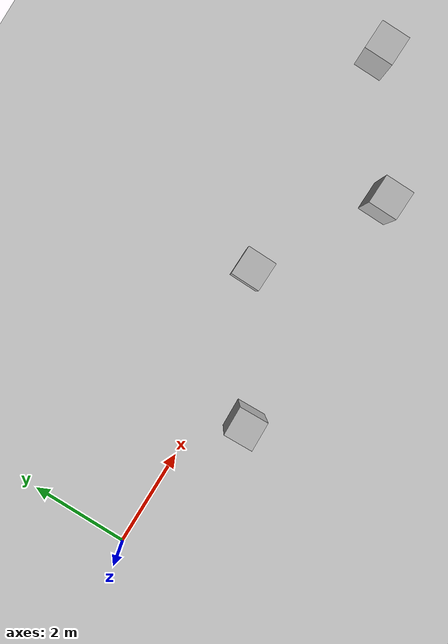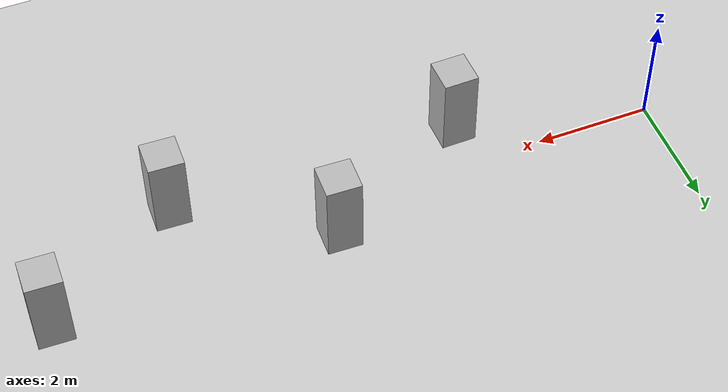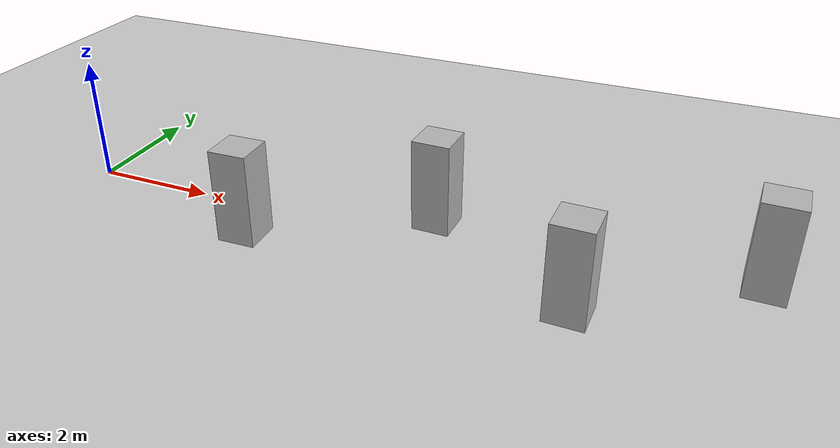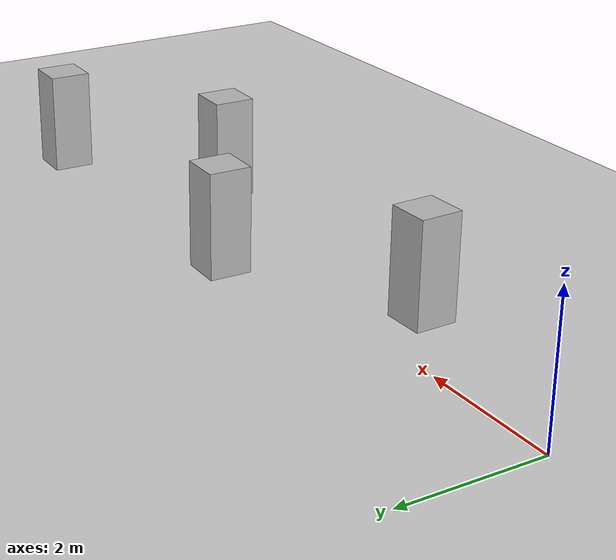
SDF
<?xml version="1.0"?>
<sdf version="1.6">
  <world name="v2-04g-r3-static-s5027">
    <gravity>0 0 -9.81</gravity>
    <physics name="v2_deterministic" type="ode">
      <max_step_size>0.002</max_step_size>
      <real_time_update_rate>500</real_time_update_rate>
    </physics>
    <include>
      <uri>model://sun</uri>
    </include>
    <include>
      <uri>model://ground_plane</uri>
    </include>
    <model name="pillar-1">
      <static>true</static>
      <pose>3.289436146 -0.787940492 0.750000000 0 0 0.024017059</pose>
      <link name="link">
        <collision name="collision">
          <geometry>
            <box>
              <size>0.600000 0.600000 1.500000</size>
            </box>
          </geometry>
        </collision>
        <visual name="visual">
          <geometry>
            <box>
              <size>0.600000 0.600000 1.500000</size>
            </box>
          </geometry>
        </visual>
      </link>
    </model>
    <model name="pillar-2">
      <static>true</static>
      <pose>5.881361616 0.636511579 0.750000000 0 0 -0.025620011</pose>
      <link name="link">
        <collision name="collision">
          <geometry>
            <box>
              <size>0.600000 0.600000 1.500000</size>
            </box>
          </geometry>
        </collision>
        <visual name="visual">
          <geometry>
            <box>
              <size>0.600000 0.600000 1.500000</size>
            </box>
          </geometry>
        </visual>
      </link>
    </model>
    <model name="pillar-3">
      <static>true</static>
      <pose>8.323158452 -0.836434839 0.750000000 0 0 -0.028485653</pose>
      <link name="link">
        <collision name="collision">
          <geometry>
            <box>
              <size>0.600000 0.600000 1.500000</size>
            </box>
          </geometry>
        </collision>
        <visual name="visual">
          <geometry>
            <box>
              <size>0.600000 0.600000 1.500000</size>
            </box>
          </geometry>
        </visual>
      </link>
    </model>
    <model name="pillar-4">
      <static>true</static>
      <pose>10.709048808 0.719710558 0.750000000 0 0 -0.027635235</pose>
      <link name="link">
        <collision name="collision">
          <geometry>
            <box>
              <size>0.600000 0.600000 1.500000</size>
            </box>
          </geometry>
        </collision>
        <visual name="visual">
          <geometry>
            <box>
              <size>0.600000 0.600000 1.500000</size>
            </box>
          </geometry>
        </visual>
      </link>
    </model>
  </world>
</sdf>
